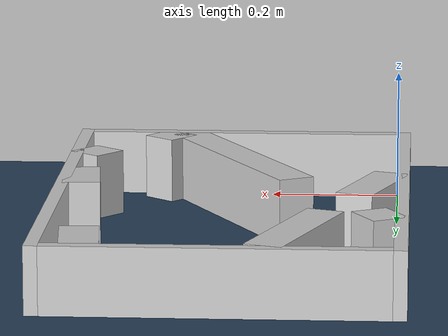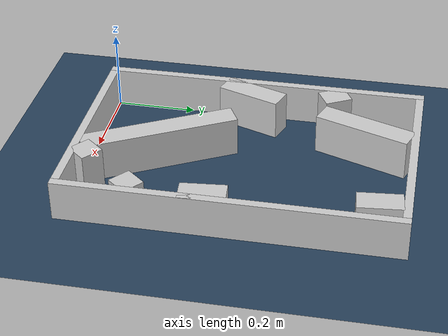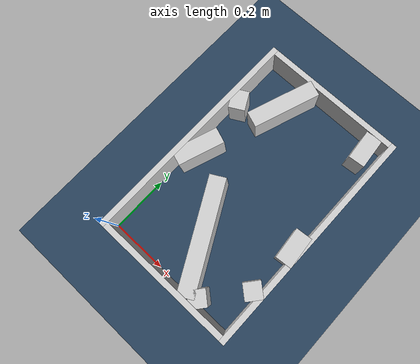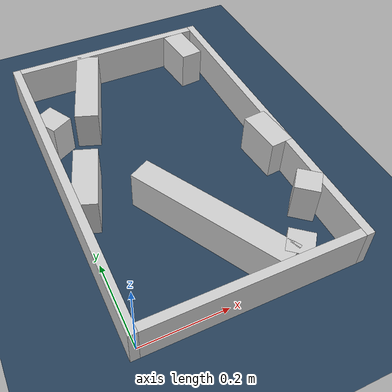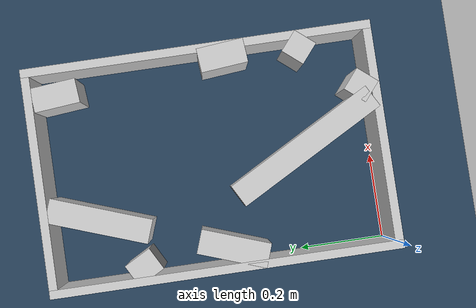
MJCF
<?xml version="1.0" ?>
<mujoco model="generated_real_template">
  <compiler angle="degree"/>
  <option timestep="0.002" integrator="implicitfast" iterations="100" cone="elliptic"/>
  <default>
    <geom density="1"/>
  </default>
  <asset>
    <texture builtin="gradient" height="3072" rgb1="0.3 0.5 0.7" rgb2="0 0 0" type="skybox" width="512"/>
    <texture builtin="checker" height="300" mark="edge" markrgb="0.8 0.8 0.8" name="groundplane" rgb1="0.2 0.3 0.4" rgb2="0.1 0.2 0.3" type="2d" width="300"/>
    <material name="groundplane" reflectance="0.2" texrepeat="5 5" texture="groundplane" texuniform="true"/>
  </asset>
  <worldbody>
    <light dir="0 0 -1" directional="true" pos="0 0 1.5"/>
    <geom name="floor" type="plane" condim="4" friction="0.5 0.005 0.001" material="groundplane" size="0 0 0.05"/>
    <body name="walls">
      <geom name="wall_boundary_left" type="box" condim="4" friction="1.0 0.005 0.0001" rgba="0.8 0.8 0.8 1" pos="-0.010000 0.387500 0.050000" euler="0 0 0.000000" size="0.010000 0.407500 0.050000"/>
      <geom name="wall_boundary_right" type="box" condim="4" friction="1.0 0.005 0.0001" rgba="0.8 0.8 0.8 1" pos="0.500000 0.387500 0.050000" euler="0 0 0.000000" size="0.010000 0.407500 0.050000"/>
      <geom name="wall_boundary_bottom" type="box" condim="4" friction="1.0 0.005 0.0001" rgba="0.8 0.8 0.8 1" pos="0.245000 -0.010000 0.050000" euler="0 0 0.000000" size="0.245000 0.010000 0.050000"/>
      <geom name="wall_boundary_top" type="box" condim="4" friction="1.0 0.005 0.0001" rgba="0.8 0.8 0.8 1" pos="0.245000 0.785000 0.050000" euler="0 0 0.000000" size="0.245000 0.010000 0.050000"/>
      <geom name="wall_inner_1_1" type="box" condim="4" friction="1.0 0.005 0.0001" rgba="0.8 0.8 0.8 1" pos="0.439661 0.721964 0.050000" euler="0 0 -84.652041" size="0.053268 0.028500 0.050000"/>
      <geom name="wall_inner_1_2" type="box" condim="4" friction="1.0 0.005 0.0001" rgba="0.8 0.8 0.8 1" pos="0.476485 0.328602 0.050000" euler="0 0 -84.652041" size="0.055132 0.028500 0.050000"/>
      <geom name="wall_inner_2_1" type="box" condim="4" friction="1.0 0.005 0.0001" rgba="0.8 0.8 0.8 1" pos="0.469598 0.151043 0.050000" euler="0 0 -129.718811" size="0.028919 0.028500 0.050000"/>
      <geom name="wall_inner_2_2" type="box" condim="4" friction="1.0 0.005 0.0001" rgba="0.8 0.8 0.8 1" pos="0.362630 0.022286 0.050000" euler="0 0 -129.718811" size="0.028974 0.028500 0.050000"/>
      <geom name="wall_inner_3_1" type="box" condim="4" friction="1.0 0.005 0.0001" rgba="0.8 0.8 0.8 1" pos="0.140260 0.661737 0.050000" euler="0 0 -109.643190" size="0.120262 0.028500 0.050000"/>
      <geom name="wall_inner_3_2" type="box" condim="4" friction="1.0 0.005 0.0001" rgba="0.8 0.8 0.8 1" pos="0.034263 0.364771 0.050000" euler="0 0 -109.643190" size="0.081570 0.028500 0.050000"/>
      <geom name="wall_inner_4_1" type="box" condim="4" friction="1.0 0.005 0.0001" rgba="0.8 0.8 0.8 1" pos="0.242201 0.168915 0.050000" euler="0 0 118.639448" size="0.192462 0.028500 0.050000"/>
      <geom name="wall_inner_4_2" type="box" condim="4" friction="1.0 0.005 0.0001" rgba="0.8 0.8 0.8 1" pos="0.021519 0.573011 0.050000" euler="0 0 118.639448" size="0.034436 0.028500 0.050000"/>
    </body>
  </worldbody>
</mujoco>
